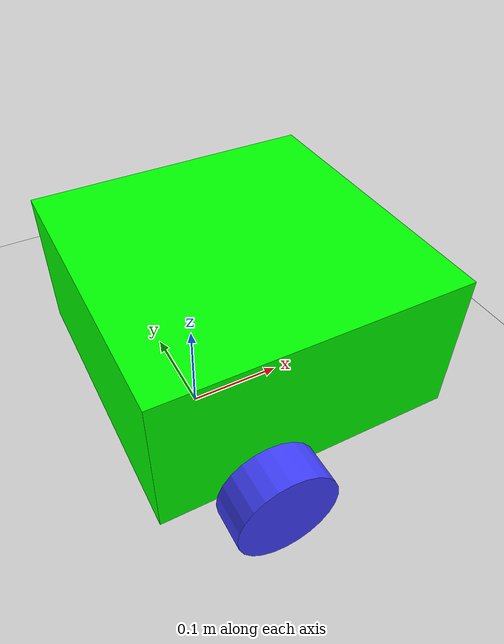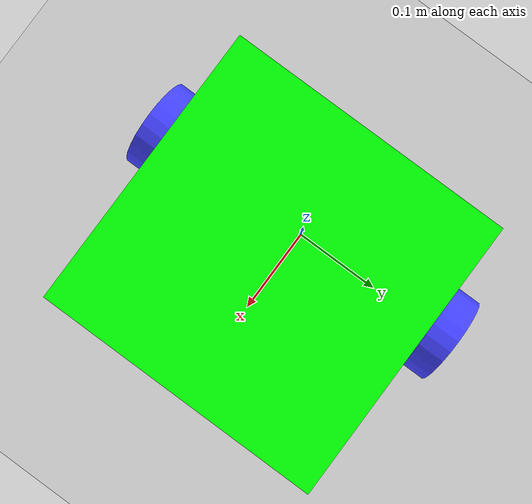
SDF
<?xml version="1.0" ?>
<sdf version="1.9">
    <world name="my_world">
        <include>
            <name>base_link</name>
            <uri>file://src/lab2urdf/description/robot.sdf</uri>
        </include>
        <physics name="1ms" type="ignored">
            <max_step_size>0.001</max_step_size>
            <real_time_factor>1.0</real_time_factor>
        </physics>
        <plugin
            filename="libignition-gazebo-physics-system.so"
            name="ignition::gazebo::systems::Physics">
        </plugin>
        <plugin
            filename="libignition-gazebo-user-commands-system.so"
            name="ignition::gazebo::systems::UserCommands">
        </plugin>
        <plugin
            filename="libignition-gazebo-scene-broadcaster-system.so"
            name="ignition::gazebo::systems::SceneBroadcaster">
        </plugin>

        <light type="directional" name="sun">
            <cast_shadows>true</cast_shadows>
            <pose>0 0 10 0 0 0</pose>
            <diffuse>0.8 0.8 0.8 1</diffuse>
            <specular>0.2 0.2 0.2 1</specular>
            <attenuation>
                <range>1000</range>
                <constant>0.9</constant>
                <linear>0.01</linear>
                <quadratic>0.001</quadratic>
            </attenuation>
            <direction>-0.5 0.1 -0.9</direction>
        </light>

        <model name="ground_plane">
            <static>true</static>
            <link name="link">
                <collision name="collision">
                <geometry>
                    <plane>
                    <normal>0 0 1</normal>
                    </plane>
                </geometry>
                </collision>
                <visual name="visual">
                <geometry>
                    <plane>
                    <normal>0 0 1</normal>
                    <size>100 100</size>
                    </plane>
                </geometry>
                <material>
                    <ambient>0.8 0.8 0.8 1</ambient>
                    <diffuse>0.8 0.8 0.8 1</diffuse>
                    <specular>0.8 0.8 0.8 1</specular>
                </material>
                </visual>
            </link>
            <!-- Moving Forward-->
            <plugin filename="libignition-gazebo-triggered-publisher-system.so"
            name="ignition::gazebo::systems::TriggeredPublisher">
                <input type="ignition.msgs.Int32" topic="/keyboard/keypress">
                    <match field="data">16777235</match>
                </input>
                <output type="ignition.msgs.Twist" topic="/cmd_vel">
                    linear: {x: 0.5}, angular: {z: 0.0}
                </output>
            </plugin>

            <!-- Stop-->
            <plugin filename="libignition-gazebo-triggered-publisher-system.so"
            name="ignition::gazebo::systems::TriggeredPublisher">
                <input type="ignition.msgs.Int32" topic="/keyboard/keypress">
                    <match field="data">16777216</match>
                </input>
                <output type="ignition.msgs.Twist" topic="/cmd_vel">
                    linear: {x: 0.0}, angular: {z: 0.0}
                </output>
            </plugin>

            <!-- Left -->
            <plugin filename="libignition-gazebo-triggered-publisher-system.so"
            name="ignition::gazebo::systems::TriggeredPublisher">
                <input type="ignition.msgs.Int32" topic="/keyboard/keypress">
                    <match field="data">16777234</match>
                </input>
                <output type="ignition.msgs.Twist" topic="/cmd_vel">
                    linear: {x: 0.0}, angular: {z: 0.5}
                </output>
            </plugin>

            <!-- Right -->
            <plugin filename="libignition-gazebo-triggered-publisher-system.so"
            name="ignition::gazebo::systems::TriggeredPublisher">
                <input type="ignition.msgs.Int32" topic="/keyboard/keypress">
                    <match field="data">16777236</match>
                </input>
                <output type="ignition.msgs.Twist" topic="/cmd_vel">
                    linear: {x: 0.0}, angular: {z: -0.5}
                </output>
            </plugin>

            <!-- back -->
            <plugin filename="libignition-gazebo-triggered-publisher-system.so"
            name="ignition::gazebo::systems::TriggeredPublisher">
                <input type="ignition.msgs.Int32" topic="/keyboard/keypress">
                    <match field="data">16777237</match>
                </input>
                <output type="ignition.msgs.Twist" topic="/cmd_vel">
                    linear: {x: -0.5}, angular: {z: 0.0}
                </output>
            </plugin>
        </model>
    </world>
</sdf>

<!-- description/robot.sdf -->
<sdf version='1.9'>
  <model name='robot'>
    <link name='base_link'>
      <inertial>
        <pose>0.105 0 0.0625 0 0 0</pose>
        <mass>0.59999999999999998</mass>
        <inertia>
          <ixx>0.0052562499999999988</ixx>
          <ixy>0</ixy>
          <ixz>0.0020625000000000001</ixz>
          <iyy>0.01433124999999999</iyy>
          <iyz>0</iyz>
          <izz>0.016674999999999999</izz>
        </inertia>
      </inertial>
      <collision name='base_link_fixed_joint_lump__chassis_collision'>
        <pose>0.04999999999999999 0 0.075 0 0 0</pose>
        <geometry>
          <box>
            <size>0.3 0.3 0.15</size>
          </box>
        </geometry>
      </collision>
      <collision name='base_link_fixed_joint_lump__caster_wheel_collision_1'>
        <pose>0.14 0 0 0 0 0</pose>
        <geometry>
          <sphere>
            <radius>0.050000000000000003</radius>
          </sphere>
        </geometry>
        <surface>
          <contact>
            <ode/>
          </contact>
          <friction>
            <ode>
              <mu>0</mu>
              <mu2>0</mu2>
            </ode>
          </friction>
        </surface>
      </collision>
      <visual name='base_link_fixed_joint_lump__chassis_visual'>
        <pose>0.04999999999999999 0 0.075 0 0 0</pose>
        <geometry>
          <box>
            <size>0.3 0.3 0.15</size>
          </box>
        </geometry>
        <material>
          <diffuse>0 1 0 1</diffuse>
          <ambient>0 1 0 1</ambient>
        </material>
      </visual>
      <visual name='base_link_fixed_joint_lump__caster_wheel_visual_1'>
        <pose>0.14 0 0 0 0 0</pose>
        <geometry>
          <sphere>
            <radius>0.050000000000000003</radius>
          </sphere>
        </geometry>
        <material>
          <diffuse>0 0 0 1</diffuse>
          <ambient>0 0 0 1</ambient>
        </material>
      </visual>
    </link>
    <joint name='left_wheel_joint' type='revolute'>
      <pose relative_to='base_link'>0 0.175 0 -1.570796326794896 0 0</pose>
      <parent>base_link</parent>
      <child>left_wheel</child>
      <axis>
        <xyz>0 0 1</xyz>
        <limit>
          <lower>-10000000000000000</lower>
          <upper>10000000000000000</upper>
        </limit>
        <dynamics>
          <spring_reference>0</spring_reference>
          <spring_stiffness>0</spring_stiffness>
        </dynamics>
      </axis>
    </joint>
    <link name='left_wheel'>
      <pose relative_to='left_wheel_joint'>0 0 0 0 0 0</pose>
      <inertial>
        <pose>0 0 0 0 0 0</pose>
        <mass>0.10000000000000001</mass>
        <inertia>
          <ixx>7.5833333333333352e-05</ixx>
          <ixy>0</ixy>
          <ixz>0</ixz>
          <iyy>7.5833333333333352e-05</iyy>
          <iyz>0</iyz>
          <izz>0.000125</izz>
        </inertia>
      </inertial>
      <collision name='left_wheel_collision'>
        <pose>0 0 0 0 0 0</pose>
        <geometry>
          <cylinder>
            <length>0.040000000000000001</length>
            <radius>0.050000000000000003</radius>
          </cylinder>
        </geometry>
      </collision>
      <visual name='left_wheel_visual'>
        <pose>0 0 0 0 0 0</pose>
        <geometry>
          <cylinder>
            <length>0.040000000000000001</length>
            <radius>0.050000000000000003</radius>
          </cylinder>
        </geometry>
        <material>
          <diffuse>0.25 0.25 1 1</diffuse>
          <ambient>0.25 0.25 1 1</ambient>
        </material>
      </visual>
    </link>
    <joint name='right_wheel_joint' type='revolute'>
      <pose relative_to='base_link'>0 -0.175 0 1.570796326794896 0 0</pose>
      <parent>base_link</parent>
      <child>right_wheel</child>
      <axis>
        <xyz>0 0 -1</xyz>
        <limit>
          <lower>-10000000000000000</lower>
          <upper>10000000000000000</upper>
        </limit>
        <dynamics>
          <spring_reference>0</spring_reference>
          <spring_stiffness>0</spring_stiffness>
        </dynamics>
      </axis>
    </joint>
    <link name='right_wheel'>
      <pose relative_to='right_wheel_joint'>0 0 0 0 0 0</pose>
      <inertial>
        <pose>0 0 0 0 0 0</pose>
        <mass>0.10000000000000001</mass>
        <inertia>
          <ixx>7.5833333333333352e-05</ixx>
          <ixy>0</ixy>
          <ixz>0</ixz>
          <iyy>7.5833333333333352e-05</iyy>
          <iyz>0</iyz>
          <izz>0.000125</izz>
        </inertia>
      </inertial>
      <collision name='right_wheel_collision'>
        <pose>0 0 0 0 0 0</pose>
        <geometry>
          <cylinder>
            <length>0.040000000000000001</length>
            <radius>0.050000000000000003</radius>
          </cylinder>
        </geometry>
      </collision>
      <visual name='right_wheel_visual'>
        <pose>0 0 0 0 0 0</pose>
        <geometry>
          <cylinder>
            <length>0.040000000000000001</length>
            <radius>0.050000000000000003</radius>
          </cylinder>
        </geometry>
        <material>
          <diffuse>0.25 0.25 1 1</diffuse>
          <ambient>0.25 0.25 1 1</ambient>
        </material>
      </visual>
    </link>
    <pose>0 0 0.05 0 0 0</pose>
    <plugin name='ignition::gazebo::systems::DiffDrive' filename='libignition-gazebo-diff-drive-system.so'>
      <left_joint>left_wheel_joint</left_joint>
      <right_joint>right_wheel_joint</right_joint>
      <wheel_separation>0.3</wheel_separation>
      <wheel_radius>0.05</wheel_radius>
      <odom_publish_frequency>1</odom_publish_frequency>
      <topic>cmd_vel</topic>
    </plugin>
    <frame name='caster_wheel_joint' attached_to='chassis'>
      <pose>0.24 0 0 0 -0 0</pose>
    </frame>
    <frame name='caster_wheel' attached_to='caster_wheel_joint'/>
    <frame name='chassis_joint' attached_to='base_link'>
      <pose>-0.1 0 0 0 -0 0</pose>
    </frame>
    <frame name='chassis' attached_to='chassis_joint'/>
  </model>
</sdf>
